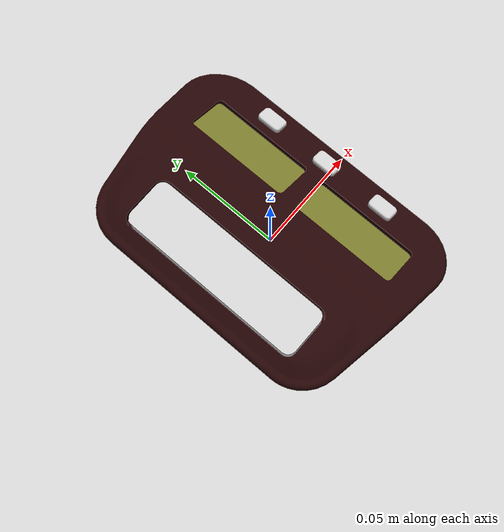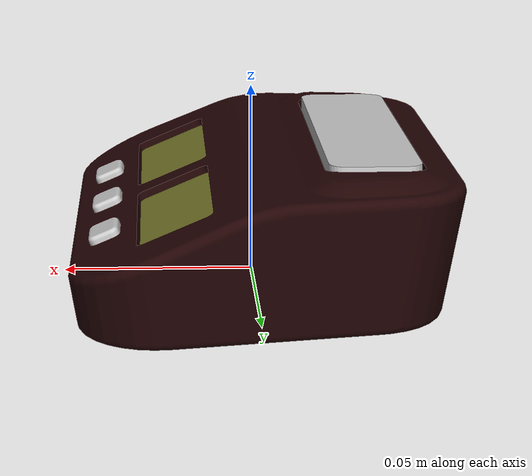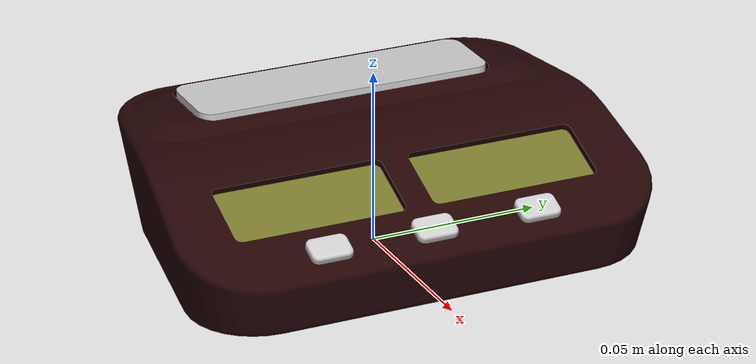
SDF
<?xml version='1.0'?>
<sdf version='1.6'>
  <model name='chessclock'>
    <static>1</static>
    <link name='link_0'>
      <inertial>
        <mass>1</mass>
        <inertia>
          <ixx>0.166667</ixx>
          <ixy>0</ixy>
          <ixz>0</ixz>
          <iyy>0.166667</iyy>
          <iyz>0</iyz>
          <izz>0.166667</izz>
        </inertia>
        <pose frame=''>0 0 0 0 0 0</pose>
      </inertial>
      <pose frame=''>0 0 0 0 0 0</pose>
      <gravity>1</gravity>
      <self_collide>0</self_collide>
      <kinematic>0</kinematic>
      <enable_wind>0</enable_wind>
      <visual name='visual'>
        <pose frame=''>0 0 0 0 0 0</pose>
        <geometry>
          <mesh>
            <uri>model://chessclock/meshes/clock.dae</uri>
            <scale>1 1 1</scale>
          </mesh>
        </geometry>
        <transparency>0</transparency>
        <cast_shadows>1</cast_shadows>
      </visual>
      <collision name='collision'>
        <laser_retro>0</laser_retro>
        <max_contacts>10</max_contacts>
        <pose frame=''>0 0 0.0175 0 0 0</pose>
        <geometry>
          <box>
            <size>0.1 0.14 0.035</size>
          </box>
        </geometry>
        <surface>
          <friction>
            <ode>
              <mu>1</mu>
              <mu2>1</mu2>
            </ode>
          </friction>
          <contact>
            <ode>
              <kp>1e+07</kp>
              <kd>1</kd>
              <max_vel>0.001</max_vel>
              <min_depth>0.1</min_depth>
            </ode>
          </contact>
        </surface>
      </collision>
    </link>
  </model>
</sdf>
